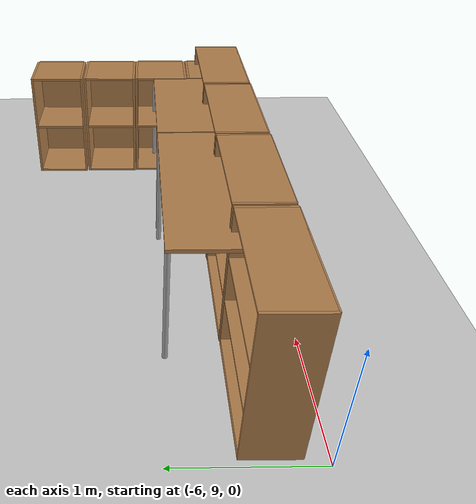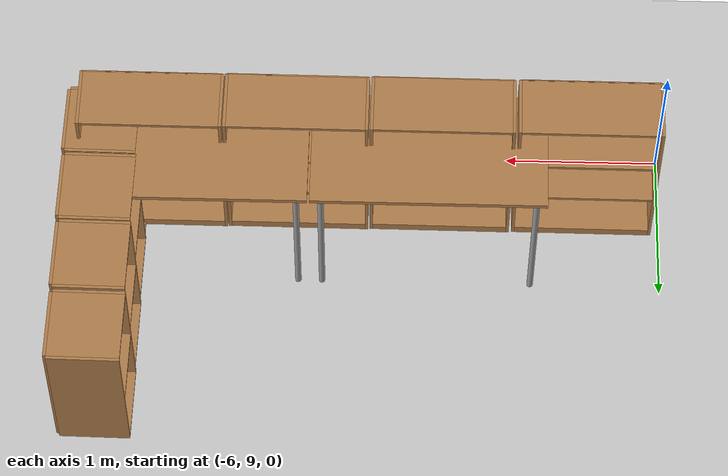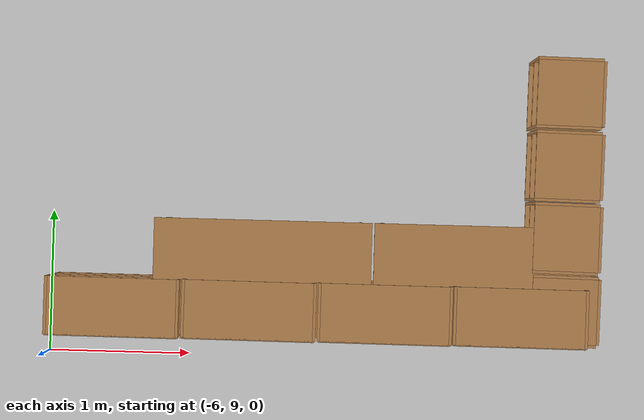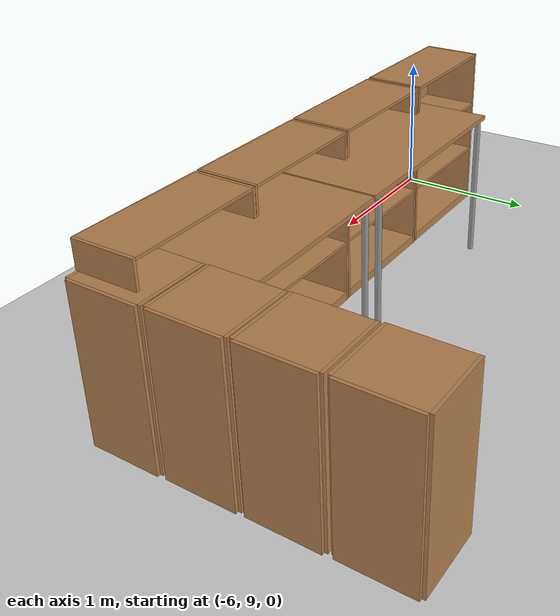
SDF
<sdf version="1.7">
 <world name="default">
  <model name="ground_plane">
   <static>1</static>
   <link name="link">
    <collision name="collision">
     <geometry><plane><normal>0 0 1</normal><size>100 100</size></plane></geometry>
     <surface><friction><ode><mu>100</mu><mu2>50</mu2></ode></friction></surface>
    </collision>
    <visual name="visual">
     <cast_shadows>0</cast_shadows>
     <geometry><plane><normal>0 0 1</normal><size>100 100</size></plane></geometry>
     <material>
      <script><uri>file://media/materials/scripts/gazebo.material</uri><name>Gazebo/Grey</name></script>
     </material>
    </visual>
   </link>
  </model>
  <model name="table_clone">
   <static>1</static>
   <link name="link">
    <collision name="surface">
     <pose>0 0 1 0 -0 0</pose>
     <geometry><box><size>1.5 0.8 0.03</size></box></geometry>
     <surface><friction><ode><mu>0.6</mu><mu2>0.6</mu2></ode></friction></surface>
    </collision>
    <visual name="visual1">
     <pose>0 0 1 0 -0 0</pose>
     <geometry><box><size>1.5 0.8 0.03</size></box></geometry>
     <material>
      <script><uri>file://media/materials/scripts/gazebo.material</uri><name>Gazebo/Wood</name></script>
     </material>
    </visual>
    <collision name="front_left_leg">
     <pose>0.68 0.38 0.5 0 -0 0</pose>
     <geometry><cylinder><radius>0.02</radius><length>1</length></cylinder></geometry>
    </collision>
    <visual name="front_left_leg">
     <pose>0.68 0.38 0.5 0 -0 0</pose>
     <geometry><cylinder><radius>0.02</radius><length>1</length></cylinder></geometry>
     <material>
      <script><uri>file://media/materials/scripts/gazebo.material</uri><name>Gazebo/Grey</name></script>
     </material>
    </visual>
    <collision name="front_right_leg">
     <pose>0.68 -0.38 0.5 0 -0 0</pose>
     <geometry><cylinder><radius>0.02</radius><length>1</length></cylinder></geometry>
    </collision>
    <visual name="front_right_leg">
     <pose>0.68 -0.38 0.5 0 -0 0</pose>
     <geometry><cylinder><radius>0.02</radius><length>1</length></cylinder></geometry>
     <material>
      <script><uri>file://media/materials/scripts/gazebo.material</uri><name>Gazebo/Grey</name></script>
     </material>
    </visual>
    <collision name="back_right_leg">
     <pose>-0.68 -0.38 0.5 0 -0 0</pose>
     <geometry><cylinder><radius>0.02</radius><length>1</length></cylinder></geometry>
    </collision>
    <visual name="back_right_leg">
     <pose>-0.68 -0.38 0.5 0 -0 0</pose>
     <geometry><cylinder><radius>0.02</radius><length>1</length></cylinder></geometry>
     <material>
      <script><uri>file://media/materials/scripts/gazebo.material</uri><name>Gazebo/Grey</name></script>
     </material>
    </visual>
    <collision name="back_left_leg">
     <pose>-0.68 0.38 0.5 0 -0 0</pose>
     <geometry><cylinder><radius>0.02</radius><length>1</length></cylinder></geometry>
    </collision>
    <visual name="back_left_leg">
     <pose>-0.68 0.38 0.5 0 -0 0</pose>
     <geometry><cylinder><radius>0.02</radius><length>1</length></cylinder></geometry>
     <material>
      <script><uri>file://media/materials/scripts/gazebo.material</uri><name>Gazebo/Grey</name></script>
     </material>
    </visual>
   </link>
   <pose>-4.47492 9.5753 0 0 -0 0</pose>
  </model>
  <model name="table_clone_0">
   <static>1</static>
   <link name="link">
    <collision name="surface">
     <pose>0 0 1 0 -0 0</pose>
     <geometry><box><size>1.5 0.8 0.03</size></box></geometry>
     <surface><friction><ode><mu>0.6</mu><mu2>0.6</mu2></ode></friction></surface>
    </collision>
    <visual name="visual1">
     <pose>0 0 1 0 -0 0</pose>
     <geometry><box><size>1.5 0.8 0.03</size></box></geometry>
     <material>
      <script><uri>file://media/materials/scripts/gazebo.material</uri><name>Gazebo/Wood</name></script>
     </material>
    </visual>
    <collision name="front_left_leg">
     <pose>0.68 0.38 0.5 0 -0 0</pose>
     <geometry><cylinder><radius>0.02</radius><length>1</length></cylinder></geometry>
    </collision>
    <visual name="front_left_leg">
     <pose>0.68 0.38 0.5 0 -0 0</pose>
     <geometry><cylinder><radius>0.02</radius><length>1</length></cylinder></geometry>
     <material>
      <script><uri>file://media/materials/scripts/gazebo.material</uri><name>Gazebo/Grey</name></script>
     </material>
    </visual>
    <collision name="front_right_leg">
     <pose>0.68 -0.38 0.5 0 -0 0</pose>
     <geometry><cylinder><radius>0.02</radius><length>1</length></cylinder></geometry>
    </collision>
    <visual name="front_right_leg">
     <pose>0.68 -0.38 0.5 0 -0 0</pose>
     <geometry><cylinder><radius>0.02</radius><length>1</length></cylinder></geometry>
     <material>
      <script><uri>file://media/materials/scripts/gazebo.material</uri><name>Gazebo/Grey</name></script>
     </material>
    </visual>
    <collision name="back_right_leg">
     <pose>-0.68 -0.38 0.5 0 -0 0</pose>
     <geometry><cylinder><radius>0.02</radius><length>1</length></cylinder></geometry>
    </collision>
    <visual name="back_right_leg">
     <pose>-0.68 -0.38 0.5 0 -0 0</pose>
     <geometry><cylinder><radius>0.02</radius><length>1</length></cylinder></geometry>
     <material>
      <script><uri>file://media/materials/scripts/gazebo.material</uri><name>Gazebo/Grey</name></script>
     </material>
    </visual>
    <collision name="back_left_leg">
     <pose>-0.68 0.38 0.5 0 -0 0</pose>
     <geometry><cylinder><radius>0.02</radius><length>1</length></cylinder></geometry>
    </collision>
    <visual name="back_left_leg">
     <pose>-0.68 0.38 0.5 0 -0 0</pose>
     <geometry><cylinder><radius>0.02</radius><length>1</length></cylinder></geometry>
     <material>
      <script><uri>file://media/materials/scripts/gazebo.material</uri><name>Gazebo/Grey</name></script>
     </material>
    </visual>
   </link>
   <pose>-2.95957 9.5753 0 0 -0 0</pose>
  </model>
  <model name="bookshelf">
   <static>1</static>
   <link name="link">
    <inertial><mass>1</mass></inertial>
    <collision name="back">
     <pose>0 0.005 0.6 0 -0 0</pose>
     <geometry><box><size>0.9 0.01 1.2</size></box></geometry>
    </collision>
    <visual name="visual1">
     <pose>0 0.005 0.6 0 -0 0</pose>
     <geometry><box><size>0.9 0.01 1.2</size></box></geometry>
     <material>
      <script><uri>file://media/materials/scripts/gazebo.material</uri><name>Gazebo/Wood</name></script>
     </material>
    </visual>
    <collision name="left_side">
     <pose>0.45 -0.195 0.6 0 -0 0</pose>
     <geometry><box><size>0.02 0.4 1.2</size></box></geometry>
    </collision>
    <visual name="visual2">
     <pose>0.45 -0.195 0.6 0 -0 0</pose>
     <geometry><box><size>0.02 0.4 1.2</size></box></geometry>
     <material>
      <script><uri>file://media/materials/scripts/gazebo.material</uri><name>Gazebo/Wood</name></script>
     </material>
    </visual>
    <collision name="right_side">
     <pose>-0.45 -0.195 0.6 0 -0 0</pose>
     <geometry><box><size>0.02 0.4 1.2</size></box></geometry>
    </collision>
    <visual name="visual3">
     <pose>-0.45 -0.195 0.6 0 -0 0</pose>
     <geometry><box><size>0.02 0.4 1.2</size></box></geometry>
     <material>
      <script><uri>file://media/materials/scripts/gazebo.material</uri><name>Gazebo/Wood</name></script>
     </material>
    </visual>
    <collision name="bottom">
     <pose>0 -0.195 0.03 0 -0 0</pose>
     <geometry><box><size>0.88 0.4 0.06</size></box></geometry>
    </collision>
    <visual name="visual4">
     <pose>0 -0.195 0.03 0 -0 0</pose>
     <geometry><box><size>0.88 0.4 0.06</size></box></geometry>
     <material>
      <script><uri>file://media/materials/scripts/gazebo.material</uri><name>Gazebo/Wood</name></script>
     </material>
    </visual>
    <collision name="top">
     <pose>0 -0.195 1.19 0 -0 0</pose>
     <geometry><box><size>0.88 0.4 0.02</size></box></geometry>
    </collision>
    <visual name="visual5">
     <pose>0 -0.195 1.19 0 -0 0</pose>
     <geometry><box><size>0.88 0.4 0.02</size></box></geometry>
     <material>
      <script><uri>file://media/materials/scripts/gazebo.material</uri><name>Gazebo/Wood</name></script>
     </material>
    </visual>
    <collision name="low_shelf">
     <pose>0 -0.195 0.43 0 -0 0</pose>
     <geometry><box><size>0.88 0.4 0.02</size></box></geometry>
    </collision>
    <visual name="visual6">
     <pose>0 -0.195 0.43 0 -0 0</pose>
     <geometry><box><size>0.88 0.4 0.02</size></box></geometry>
     <material>
      <script><uri>file://media/materials/scripts/gazebo.material</uri><name>Gazebo/Wood</name></script>
     </material>
    </visual>
    <collision name="high_shelf">
     <pose>0 -0.195 0.8 0 -0 0</pose>
     <geometry><box><size>0.88 0.4 0.02</size></box></geometry>
    </collision>
    <visual name="visual7">
     <pose>0 -0.195 0.8 0 -0 0</pose>
     <geometry><box><size>0.88 0.4 0.02</size></box></geometry>
     <material>
      <script><uri>file://media/materials/scripts/gazebo.material</uri><name>Gazebo/Wood</name></script>
     </material>
    </visual>
   </link>
   <pose>-2.70056 9.16191 0 0 -0 3.13728</pose>
  </model>
  <model name="bookshelf_clone">
   <static>1</static>
   <link name="link">
    <inertial><mass>1</mass></inertial>
    <collision name="back">
     <pose>0 0.005 0.6 0 -0 0</pose>
     <geometry><box><size>0.9 0.01 1.2</size></box></geometry>
    </collision>
    <visual name="visual1">
     <pose>0 0.005 0.6 0 -0 0</pose>
     <geometry><box><size>0.9 0.01 1.2</size></box></geometry>
     <material>
      <script><uri>file://media/materials/scripts/gazebo.material</uri><name>Gazebo/Wood</name></script>
     </material>
    </visual>
    <collision name="left_side">
     <pose>0.45 -0.195 0.6 0 -0 0</pose>
     <geometry><box><size>0.02 0.4 1.2</size></box></geometry>
    </collision>
    <visual name="visual2">
     <pose>0.45 -0.195 0.6 0 -0 0</pose>
     <geometry><box><size>0.02 0.4 1.2</size></box></geometry>
     <material>
      <script><uri>file://media/materials/scripts/gazebo.material</uri><name>Gazebo/Wood</name></script>
     </material>
    </visual>
    <collision name="right_side">
     <pose>-0.45 -0.195 0.6 0 -0 0</pose>
     <geometry><box><size>0.02 0.4 1.2</size></box></geometry>
    </collision>
    <visual name="visual3">
     <pose>-0.45 -0.195 0.6 0 -0 0</pose>
     <geometry><box><size>0.02 0.4 1.2</size></box></geometry>
     <material>
      <script><uri>file://media/materials/scripts/gazebo.material</uri><name>Gazebo/Wood</name></script>
     </material>
    </visual>
    <collision name="bottom">
     <pose>0 -0.195 0.03 0 -0 0</pose>
     <geometry><box><size>0.88 0.4 0.06</size></box></geometry>
    </collision>
    <visual name="visual4">
     <pose>0 -0.195 0.03 0 -0 0</pose>
     <geometry><box><size>0.88 0.4 0.06</size></box></geometry>
     <material>
      <script><uri>file://media/materials/scripts/gazebo.material</uri><name>Gazebo/Wood</name></script>
     </material>
    </visual>
    <collision name="top">
     <pose>0 -0.195 1.19 0 -0 0</pose>
     <geometry><box><size>0.88 0.4 0.02</size></box></geometry>
    </collision>
    <visual name="visual5">
     <pose>0 -0.195 1.19 0 -0 0</pose>
     <geometry><box><size>0.88 0.4 0.02</size></box></geometry>
     <material>
      <script><uri>file://media/materials/scripts/gazebo.material</uri><name>Gazebo/Wood</name></script>
     </material>
    </visual>
    <collision name="low_shelf">
     <pose>0 -0.195 0.43 0 -0 0</pose>
     <geometry><box><size>0.88 0.4 0.02</size></box></geometry>
    </collision>
    <visual name="visual6">
     <pose>0 -0.195 0.43 0 -0 0</pose>
     <geometry><box><size>0.88 0.4 0.02</size></box></geometry>
     <material>
      <script><uri>file://media/materials/scripts/gazebo.material</uri><name>Gazebo/Wood</name></script>
     </material>
    </visual>
    <collision name="high_shelf">
     <pose>0 -0.195 0.8 0 -0 0</pose>
     <geometry><box><size>0.88 0.4 0.02</size></box></geometry>
    </collision>
    <visual name="visual7">
     <pose>0 -0.195 0.8 0 -0 0</pose>
     <geometry><box><size>0.88 0.4 0.02</size></box></geometry>
     <material>
      <script><uri>file://media/materials/scripts/gazebo.material</uri><name>Gazebo/Wood</name></script>
     </material>
    </visual>
   </link>
   <pose>-3.62714 9.16191 0 0 -0 3.13728</pose>
  </model>
  <model name="bookshelf_clone_0">
   <static>1</static>
   <link name="link">
    <inertial><mass>1</mass></inertial>
    <collision name="back">
     <pose>0 0.005 0.6 0 -0 0</pose>
     <geometry><box><size>0.9 0.01 1.2</size></box></geometry>
    </collision>
    <visual name="visual1">
     <pose>0 0.005 0.6 0 -0 0</pose>
     <geometry><box><size>0.9 0.01 1.2</size></box></geometry>
     <material>
      <script><uri>file://media/materials/scripts/gazebo.material</uri><name>Gazebo/Wood</name></script>
     </material>
    </visual>
    <collision name="left_side">
     <pose>0.45 -0.195 0.6 0 -0 0</pose>
     <geometry><box><size>0.02 0.4 1.2</size></box></geometry>
    </collision>
    <visual name="visual2">
     <pose>0.45 -0.195 0.6 0 -0 0</pose>
     <geometry><box><size>0.02 0.4 1.2</size></box></geometry>
     <material>
      <script><uri>file://media/materials/scripts/gazebo.material</uri><name>Gazebo/Wood</name></script>
     </material>
    </visual>
    <collision name="right_side">
     <pose>-0.45 -0.195 0.6 0 -0 0</pose>
     <geometry><box><size>0.02 0.4 1.2</size></box></geometry>
    </collision>
    <visual name="visual3">
     <pose>-0.45 -0.195 0.6 0 -0 0</pose>
     <geometry><box><size>0.02 0.4 1.2</size></box></geometry>
     <material>
      <script><uri>file://media/materials/scripts/gazebo.material</uri><name>Gazebo/Wood</name></script>
     </material>
    </visual>
    <collision name="bottom">
     <pose>0 -0.195 0.03 0 -0 0</pose>
     <geometry><box><size>0.88 0.4 0.06</size></box></geometry>
    </collision>
    <visual name="visual4">
     <pose>0 -0.195 0.03 0 -0 0</pose>
     <geometry><box><size>0.88 0.4 0.06</size></box></geometry>
     <material>
      <script><uri>file://media/materials/scripts/gazebo.material</uri><name>Gazebo/Wood</name></script>
     </material>
    </visual>
    <collision name="top">
     <pose>0 -0.195 1.19 0 -0 0</pose>
     <geometry><box><size>0.88 0.4 0.02</size></box></geometry>
    </collision>
    <visual name="visual5">
     <pose>0 -0.195 1.19 0 -0 0</pose>
     <geometry><box><size>0.88 0.4 0.02</size></box></geometry>
     <material>
      <script><uri>file://media/materials/scripts/gazebo.material</uri><name>Gazebo/Wood</name></script>
     </material>
    </visual>
    <collision name="low_shelf">
     <pose>0 -0.195 0.43 0 -0 0</pose>
     <geometry><box><size>0.88 0.4 0.02</size></box></geometry>
    </collision>
    <visual name="visual6">
     <pose>0 -0.195 0.43 0 -0 0</pose>
     <geometry><box><size>0.88 0.4 0.02</size></box></geometry>
     <material>
      <script><uri>file://media/materials/scripts/gazebo.material</uri><name>Gazebo/Wood</name></script>
     </material>
    </visual>
    <collision name="high_shelf">
     <pose>0 -0.195 0.8 0 -0 0</pose>
     <geometry><box><size>0.88 0.4 0.02</size></box></geometry>
    </collision>
    <visual name="visual7">
     <pose>0 -0.195 0.8 0 -0 0</pose>
     <geometry><box><size>0.88 0.4 0.02</size></box></geometry>
     <material>
      <script><uri>file://media/materials/scripts/gazebo.material</uri><name>Gazebo/Wood</name></script>
     </material>
    </visual>
   </link>
   <pose>-4.55765 9.16191 0 0 -0 3.13728</pose>
  </model>
  <model name="bookshelf_clone_1">
   <static>1</static>
   <link name="link">
    <inertial><mass>1</mass></inertial>
    <collision name="back">
     <pose>0 0.005 0.6 0 -0 0</pose>
     <geometry><box><size>0.9 0.01 1.2</size></box></geometry>
    </collision>
    <visual name="visual1">
     <pose>0 0.005 0.6 0 -0 0</pose>
     <geometry><box><size>0.9 0.01 1.2</size></box></geometry>
     <material>
      <script><uri>file://media/materials/scripts/gazebo.material</uri><name>Gazebo/Wood</name></script>
     </material>
    </visual>
    <collision name="left_side">
     <pose>0.45 -0.195 0.6 0 -0 0</pose>
     <geometry><box><size>0.02 0.4 1.2</size></box></geometry>
    </collision>
    <visual name="visual2">
     <pose>0.45 -0.195 0.6 0 -0 0</pose>
     <geometry><box><size>0.02 0.4 1.2</size></box></geometry>
     <material>
      <script><uri>file://media/materials/scripts/gazebo.material</uri><name>Gazebo/Wood</name></script>
     </material>
    </visual>
    <collision name="right_side">
     <pose>-0.45 -0.195 0.6 0 -0 0</pose>
     <geometry><box><size>0.02 0.4 1.2</size></box></geometry>
    </collision>
    <visual name="visual3">
     <pose>-0.45 -0.195 0.6 0 -0 0</pose>
     <geometry><box><size>0.02 0.4 1.2</size></box></geometry>
     <material>
      <script><uri>file://media/materials/scripts/gazebo.material</uri><name>Gazebo/Wood</name></script>
     </material>
    </visual>
    <collision name="bottom">
     <pose>0 -0.195 0.03 0 -0 0</pose>
     <geometry><box><size>0.88 0.4 0.06</size></box></geometry>
    </collision>
    <visual name="visual4">
     <pose>0 -0.195 0.03 0 -0 0</pose>
     <geometry><box><size>0.88 0.4 0.06</size></box></geometry>
     <material>
      <script><uri>file://media/materials/scripts/gazebo.material</uri><name>Gazebo/Wood</name></script>
     </material>
    </visual>
    <collision name="top">
     <pose>0 -0.195 1.19 0 -0 0</pose>
     <geometry><box><size>0.88 0.4 0.02</size></box></geometry>
    </collision>
    <visual name="visual5">
     <pose>0 -0.195 1.19 0 -0 0</pose>
     <geometry><box><size>0.88 0.4 0.02</size></box></geometry>
     <material>
      <script><uri>file://media/materials/scripts/gazebo.material</uri><name>Gazebo/Wood</name></script>
     </material>
    </visual>
    <collision name="low_shelf">
     <pose>0 -0.195 0.43 0 -0 0</pose>
     <geometry><box><size>0.88 0.4 0.02</size></box></geometry>
    </collision>
    <visual name="visual6">
     <pose>0 -0.195 0.43 0 -0 0</pose>
     <geometry><box><size>0.88 0.4 0.02</size></box></geometry>
     <material>
      <script><uri>file://media/materials/scripts/gazebo.material</uri><name>Gazebo/Wood</name></script>
     </material>
    </visual>
    <collision name="high_shelf">
     <pose>0 -0.195 0.8 0 -0 0</pose>
     <geometry><box><size>0.88 0.4 0.02</size></box></geometry>
    </collision>
    <visual name="visual7">
     <pose>0 -0.195 0.8 0 -0 0</pose>
     <geometry><box><size>0.88 0.4 0.02</size></box></geometry>
     <material>
      <script><uri>file://media/materials/scripts/gazebo.material</uri><name>Gazebo/Wood</name></script>
     </material>
    </visual>
   </link>
   <pose>-5.49467 9.16191 0 0 -0 3.13728</pose>
  </model>
  <model name="cabinet_clone_0_clone_2">
   <static>1</static>
   <link name="cabinet_bottom_plate">
    <inertial>
     <pose>0 0 -1 0 -0 0</pose>
     <inertia><ixx>2.05</ixx><ixy>0</ixy><ixz>0</ixz><iyy>2.05</iyy><iyz>0</iyz><izz>2.05</izz></inertia>
     <mass>25</mass>
    </inertial>
    <collision name="cabinet_bottom_plate_geom">
     <pose>0 0 0.01 0 -0 0</pose>
     <geometry><box><size>0.45 0.45 0.02</size></box></geometry>
    </collision>
    <visual name="cabinet_bottom_plate_geom_visual">
     <pose>0 0 0.01 0 -0 0</pose>
     <geometry><box><size>0.45 0.45 0.02</size></box></geometry>
     <material>
      <script><uri>file://media/materials/scripts/gazebo.material</uri><name>Gazebo/Wood</name></script>
     </material>
    </visual>
    <collision name="cabinet_bottom_plate_geom_cabinet_back_plate">
     <pose>0.235 0 0.51 0 -0 0</pose>
     <geometry><box><size>0.02 0.45 1.02</size></box></geometry>
    </collision>
    <visual name="cabinet_bottom_plate_geom_cabinet_back_plate_visual">
     <pose>0.235 0 0.51 0 -0 0</pose>
     <geometry><box><size>0.02 0.45 1.02</size></box></geometry>
     <material>
      <script><uri>file://media/materials/scripts/gazebo.material</uri><name>Gazebo/Wood</name></script>
     </material>
    </visual>
    <collision name="cabinet_bottom_plate_geom_cabinet_left_plate">
     <pose>0 0.235 0.51 0 -0 0</pose>
     <geometry><box><size>0.45 0.02 1.02</size></box></geometry>
    </collision>
    <visual name="cabinet_bottom_plate_geom_cabinet_left_plate_visual">
     <pose>0 0.235 0.51 0 -0 0</pose>
     <geometry><box><size>0.45 0.02 1.02</size></box></geometry>
     <material>
      <script><uri>file://media/materials/scripts/gazebo.material</uri><name>Gazebo/Wood</name></script>
     </material>
    </visual>
    <collision name="cabinet_bottom_plate_geom_cabinet_middle_plate">
     <pose>0 0 0.51 0 -0 0</pose>
     <geometry><box><size>0.45 0.45 0.02</size></box></geometry>
    </collision>
    <visual name="cabinet_bottom_plate_geom_cabinet_middle_plate_visual">
     <pose>0 0 0.51 0 -0 0</pose>
     <geometry><box><size>0.45 0.45 0.02</size></box></geometry>
     <material>
      <script><uri>file://media/materials/scripts/gazebo.material</uri><name>Gazebo/Wood</name></script>
     </material>
    </visual>
    <collision name="cabinet_bottom_plate_geom_cabinet_right_plate">
     <pose>0 -0.235 0.51 0 -0 0</pose>
     <geometry><box><size>0.45 0.02 1.02</size></box></geometry>
    </collision>
    <visual name="cabinet_bottom_plate_geom_cabinet_right_plate_visual">
     <pose>0 -0.235 0.51 0 -0 0</pose>
     <geometry><box><size>0.45 0.02 1.02</size></box></geometry>
     <material>
      <script><uri>file://media/materials/scripts/gazebo.material</uri><name>Gazebo/Wood</name></script>
     </material>
    </visual>
    <collision name="cabinet_bottom_plate_geom_cabinet_top_plate">
     <pose>0 0 1.01 0 -0 0</pose>
     <geometry><box><size>0.45 0.45 0.02</size></box></geometry>
    </collision>
    <visual name="cabinet_bottom_plate_geom_cabinet_top_plate_visual">
     <pose>0 0 1.01 0 -0 0</pose>
     <geometry><box><size>0.45 0.45 0.02</size></box></geometry>
     <material>
      <script><uri>file://media/materials/scripts/gazebo.material</uri><name>Gazebo/Wood</name></script>
     </material>
    </visual>
   </link>
   <pose>-2.39091 9.90419 0 0 0 -0.014671</pose>
  </model>
  <model name="cabinet_clone_0_clone_2_clone">
   <static>1</static>
   <link name="cabinet_bottom_plate">
    <inertial>
     <pose>0 0 -1 0 -0 0</pose>
     <inertia><ixx>2.05</ixx><ixy>0</ixy><ixz>0</ixz><iyy>2.05</iyy><iyz>0</iyz><izz>2.05</izz></inertia>
     <mass>25</mass>
    </inertial>
    <collision name="cabinet_bottom_plate_geom">
     <pose>0 0 0.01 0 -0 0</pose>
     <geometry><box><size>0.45 0.45 0.02</size></box></geometry>
    </collision>
    <visual name="cabinet_bottom_plate_geom_visual">
     <pose>0 0 0.01 0 -0 0</pose>
     <geometry><box><size>0.45 0.45 0.02</size></box></geometry>
     <material>
      <script><uri>file://media/materials/scripts/gazebo.material</uri><name>Gazebo/Wood</name></script>
     </material>
    </visual>
    <collision name="cabinet_bottom_plate_geom_cabinet_back_plate">
     <pose>0.235 0 0.51 0 -0 0</pose>
     <geometry><box><size>0.02 0.45 1.02</size></box></geometry>
    </collision>
    <visual name="cabinet_bottom_plate_geom_cabinet_back_plate_visual">
     <pose>0.235 0 0.51 0 -0 0</pose>
     <geometry><box><size>0.02 0.45 1.02</size></box></geometry>
     <material>
      <script><uri>file://media/materials/scripts/gazebo.material</uri><name>Gazebo/Wood</name></script>
     </material>
    </visual>
    <collision name="cabinet_bottom_plate_geom_cabinet_left_plate">
     <pose>0 0.235 0.51 0 -0 0</pose>
     <geometry><box><size>0.45 0.02 1.02</size></box></geometry>
    </collision>
    <visual name="cabinet_bottom_plate_geom_cabinet_left_plate_visual">
     <pose>0 0.235 0.51 0 -0 0</pose>
     <geometry><box><size>0.45 0.02 1.02</size></box></geometry>
     <material>
      <script><uri>file://media/materials/scripts/gazebo.material</uri><name>Gazebo/Wood</name></script>
     </material>
    </visual>
    <collision name="cabinet_bottom_plate_geom_cabinet_middle_plate">
     <pose>0 0 0.51 0 -0 0</pose>
     <geometry><box><size>0.45 0.45 0.02</size></box></geometry>
    </collision>
    <visual name="cabinet_bottom_plate_geom_cabinet_middle_plate_visual">
     <pose>0 0 0.51 0 -0 0</pose>
     <geometry><box><size>0.45 0.45 0.02</size></box></geometry>
     <material>
      <script><uri>file://media/materials/scripts/gazebo.material</uri><name>Gazebo/Wood</name></script>
     </material>
    </visual>
    <collision name="cabinet_bottom_plate_geom_cabinet_right_plate">
     <pose>0 -0.235 0.51 0 -0 0</pose>
     <geometry><box><size>0.45 0.02 1.02</size></box></geometry>
    </collision>
    <visual name="cabinet_bottom_plate_geom_cabinet_right_plate_visual">
     <pose>0 -0.235 0.51 0 -0 0</pose>
     <geometry><box><size>0.45 0.02 1.02</size></box></geometry>
     <material>
      <script><uri>file://media/materials/scripts/gazebo.material</uri><name>Gazebo/Wood</name></script>
     </material>
    </visual>
    <collision name="cabinet_bottom_plate_geom_cabinet_top_plate">
     <pose>0 0 1.01 0 -0 0</pose>
     <geometry><box><size>0.45 0.45 0.02</size></box></geometry>
    </collision>
    <visual name="cabinet_bottom_plate_geom_cabinet_top_plate_visual">
     <pose>0 0 1.01 0 -0 0</pose>
     <geometry><box><size>0.45 0.45 0.02</size></box></geometry>
     <material>
      <script><uri>file://media/materials/scripts/gazebo.material</uri><name>Gazebo/Wood</name></script>
     </material>
    </visual>
   </link>
   <pose>-2.39091 10.4008 0 0 0 -0.014671</pose>
  </model>
  <model name="cabinet_clone_0_clone_2_clone_0">
   <static>1</static>
   <link name="cabinet_bottom_plate">
    <inertial>
     <pose>0 0 -1 0 -0 0</pose>
     <inertia><ixx>2.05</ixx><ixy>0</ixy><ixz>0</ixz><iyy>2.05</iyy><iyz>0</iyz><izz>2.05</izz></inertia>
     <mass>25</mass>
    </inertial>
    <collision name="cabinet_bottom_plate_geom">
     <pose>0 0 0.01 0 -0 0</pose>
     <geometry><box><size>0.45 0.45 0.02</size></box></geometry>
    </collision>
    <visual name="cabinet_bottom_plate_geom_visual">
     <pose>0 0 0.01 0 -0 0</pose>
     <geometry><box><size>0.45 0.45 0.02</size></box></geometry>
     <material>
      <script><uri>file://media/materials/scripts/gazebo.material</uri><name>Gazebo/Wood</name></script>
     </material>
    </visual>
    <collision name="cabinet_bottom_plate_geom_cabinet_back_plate">
     <pose>0.235 0 0.51 0 -0 0</pose>
     <geometry><box><size>0.02 0.45 1.02</size></box></geometry>
    </collision>
    <visual name="cabinet_bottom_plate_geom_cabinet_back_plate_visual">
     <pose>0.235 0 0.51 0 -0 0</pose>
     <geometry><box><size>0.02 0.45 1.02</size></box></geometry>
     <material>
      <script><uri>file://media/materials/scripts/gazebo.material</uri><name>Gazebo/Wood</name></script>
     </material>
    </visual>
    <collision name="cabinet_bottom_plate_geom_cabinet_left_plate">
     <pose>0 0.235 0.51 0 -0 0</pose>
     <geometry><box><size>0.45 0.02 1.02</size></box></geometry>
    </collision>
    <visual name="cabinet_bottom_plate_geom_cabinet_left_plate_visual">
     <pose>0 0.235 0.51 0 -0 0</pose>
     <geometry><box><size>0.45 0.02 1.02</size></box></geometry>
     <material>
      <script><uri>file://media/materials/scripts/gazebo.material</uri><name>Gazebo/Wood</name></script>
     </material>
    </visual>
    <collision name="cabinet_bottom_plate_geom_cabinet_middle_plate">
     <pose>0 0 0.51 0 -0 0</pose>
     <geometry><box><size>0.45 0.45 0.02</size></box></geometry>
    </collision>
    <visual name="cabinet_bottom_plate_geom_cabinet_middle_plate_visual">
     <pose>0 0 0.51 0 -0 0</pose>
     <geometry><box><size>0.45 0.45 0.02</size></box></geometry>
     <material>
      <script><uri>file://media/materials/scripts/gazebo.material</uri><name>Gazebo/Wood</name></script>
     </material>
    </visual>
    <collision name="cabinet_bottom_plate_geom_cabinet_right_plate">
     <pose>0 -0.235 0.51 0 -0 0</pose>
     <geometry><box><size>0.45 0.02 1.02</size></box></geometry>
    </collision>
    <visual name="cabinet_bottom_plate_geom_cabinet_right_plate_visual">
     <pose>0 -0.235 0.51 0 -0 0</pose>
     <geometry><box><size>0.45 0.02 1.02</size></box></geometry>
     <material>
      <script><uri>file://media/materials/scripts/gazebo.material</uri><name>Gazebo/Wood</name></script>
     </material>
    </visual>
    <collision name="cabinet_bottom_plate_geom_cabinet_top_plate">
     <pose>0 0 1.01 0 -0 0</pose>
     <geometry><box><size>0.45 0.45 0.02</size></box></geometry>
    </collision>
    <visual name="cabinet_bottom_plate_geom_cabinet_top_plate_visual">
     <pose>0 0 1.01 0 -0 0</pose>
     <geometry><box><size>0.45 0.45 0.02</size></box></geometry>
     <material>
      <script><uri>file://media/materials/scripts/gazebo.material</uri><name>Gazebo/Wood</name></script>
     </material>
    </visual>
   </link>
   <pose>-2.39091 10.9054 0 0 0 -0.014671</pose>
  </model>
  <model name="cabinet_clone_0_clone_2_clone_1">
   <static>1</static>
   <link name="cabinet_bottom_plate">
    <inertial>
     <pose>0 0 -1 0 -0 0</pose>
     <inertia><ixx>2.05</ixx><ixy>0</ixy><ixz>0</ixz><iyy>2.05</iyy><iyz>0</iyz><izz>2.05</izz></inertia>
     <mass>25</mass>
    </inertial>
    <collision name="cabinet_bottom_plate_geom">
     <pose>0 0 0.01 0 -0 0</pose>
     <geometry><box><size>0.45 0.45 0.02</size></box></geometry>
    </collision>
    <visual name="cabinet_bottom_plate_geom_visual">
     <pose>0 0 0.01 0 -0 0</pose>
     <geometry><box><size>0.45 0.45 0.02</size></box></geometry>
     <material>
      <script><uri>file://media/materials/scripts/gazebo.material</uri><name>Gazebo/Wood</name></script>
     </material>
    </visual>
    <collision name="cabinet_bottom_plate_geom_cabinet_back_plate">
     <pose>0.235 0 0.51 0 -0 0</pose>
     <geometry><box><size>0.02 0.45 1.02</size></box></geometry>
    </collision>
    <visual name="cabinet_bottom_plate_geom_cabinet_back_plate_visual">
     <pose>0.235 0 0.51 0 -0 0</pose>
     <geometry><box><size>0.02 0.45 1.02</size></box></geometry>
     <material>
      <script><uri>file://media/materials/scripts/gazebo.material</uri><name>Gazebo/Wood</name></script>
     </material>
    </visual>
    <collision name="cabinet_bottom_plate_geom_cabinet_left_plate">
     <pose>0 0.235 0.51 0 -0 0</pose>
     <geometry><box><size>0.45 0.02 1.02</size></box></geometry>
    </collision>
    <visual name="cabinet_bottom_plate_geom_cabinet_left_plate_visual">
     <pose>0 0.235 0.51 0 -0 0</pose>
     <geometry><box><size>0.45 0.02 1.02</size></box></geometry>
     <material>
      <script><uri>file://media/materials/scripts/gazebo.material</uri><name>Gazebo/Wood</name></script>
     </material>
    </visual>
    <collision name="cabinet_bottom_plate_geom_cabinet_middle_plate">
     <pose>0 0 0.51 0 -0 0</pose>
     <geometry><box><size>0.45 0.45 0.02</size></box></geometry>
    </collision>
    <visual name="cabinet_bottom_plate_geom_cabinet_middle_plate_visual">
     <pose>0 0 0.51 0 -0 0</pose>
     <geometry><box><size>0.45 0.45 0.02</size></box></geometry>
     <material>
      <script><uri>file://media/materials/scripts/gazebo.material</uri><name>Gazebo/Wood</name></script>
     </material>
    </visual>
    <collision name="cabinet_bottom_plate_geom_cabinet_right_plate">
     <pose>0 -0.235 0.51 0 -0 0</pose>
     <geometry><box><size>0.45 0.02 1.02</size></box></geometry>
    </collision>
    <visual name="cabinet_bottom_plate_geom_cabinet_right_plate_visual">
     <pose>0 -0.235 0.51 0 -0 0</pose>
     <geometry><box><size>0.45 0.02 1.02</size></box></geometry>
     <material>
      <script><uri>file://media/materials/scripts/gazebo.material</uri><name>Gazebo/Wood</name></script>
     </material>
    </visual>
    <collision name="cabinet_bottom_plate_geom_cabinet_top_plate">
     <pose>0 0 1.01 0 -0 0</pose>
     <geometry><box><size>0.45 0.45 0.02</size></box></geometry>
    </collision>
    <visual name="cabinet_bottom_plate_geom_cabinet_top_plate_visual">
     <pose>0 0 1.01 0 -0 0</pose>
     <geometry><box><size>0.45 0.45 0.02</size></box></geometry>
     <material>
      <script><uri>file://media/materials/scripts/gazebo.material</uri><name>Gazebo/Wood</name></script>
     </material>
    </visual>
   </link>
   <pose>-2.39091 9.40548 0 0 0 -0.014671</pose>
  </model>
 </world>
</sdf>
